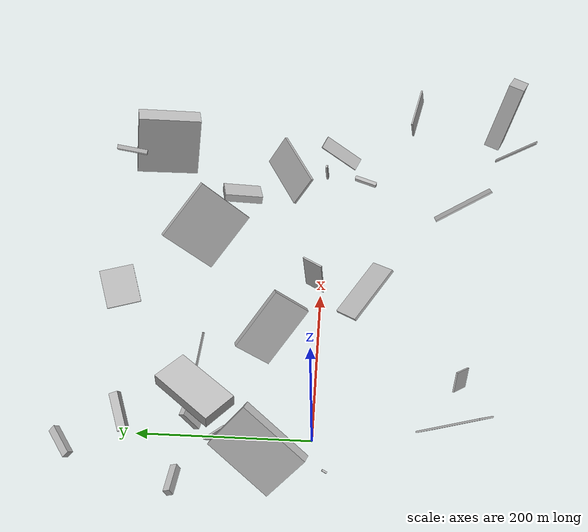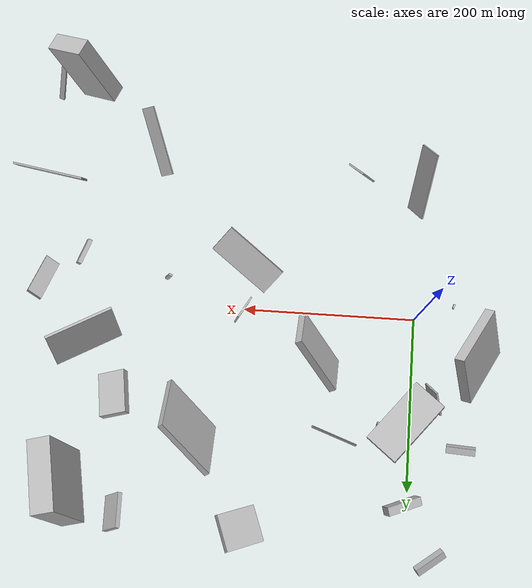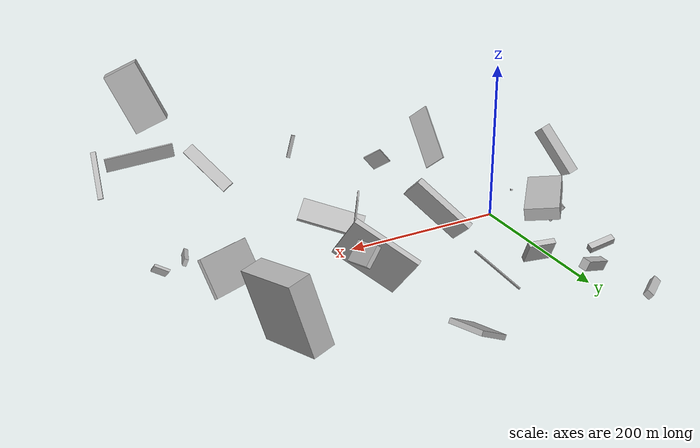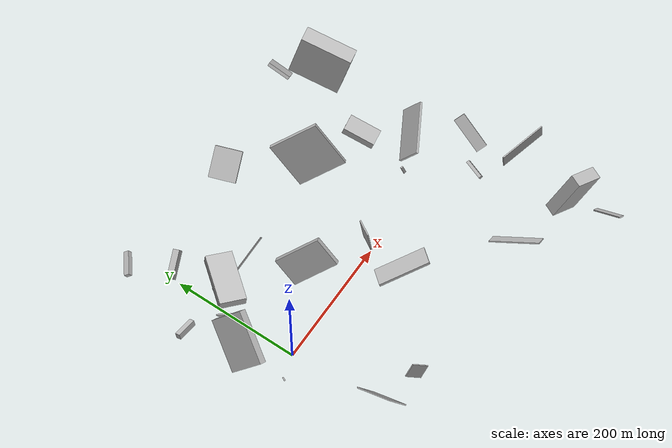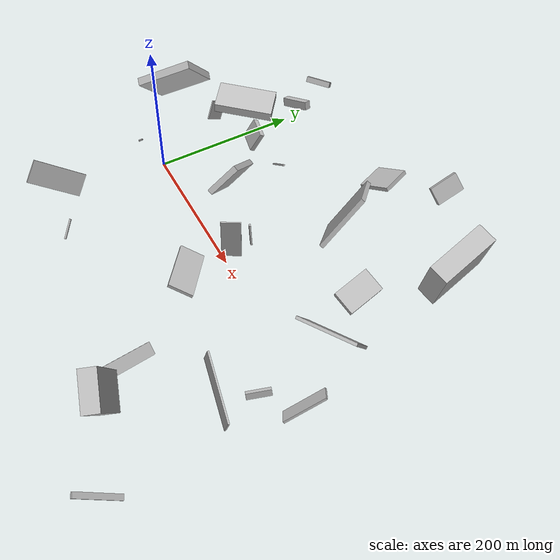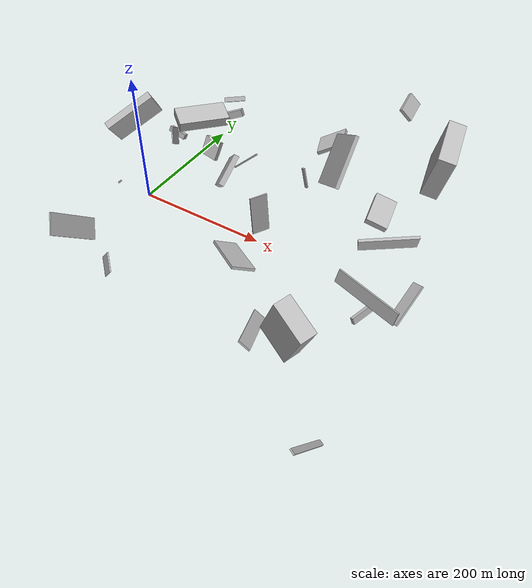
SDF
<sdf version="1.6">
 <world name="default">
  <scene>
   <sky><clouds><speed>12</speed></clouds></sky>
   <ambient>0.4 0.4 0.4 1</ambient>
   <background>0.7 0.7 0.7 1</background>
   <shadows>1</shadows>
  </scene>
  <gravity>0 0 -9.8066</gravity>
  <magnetic_field>6e-06 2.3e-05 -4.2e-05</magnetic_field>
  <physics default="0" name="default_physics" type="ode">
   <ode>
    <solver>
     <type>quick</type>
     <iters>10</iters>
     <sor>1.0</sor>
     <use_dynamic_moi_rescaling>0</use_dynamic_moi_rescaling>
    </solver>
    <constraints>
     <cfm>0</cfm>
     <erp>0.2</erp>
     <contact_max_correcting_vel>100</contact_max_correcting_vel>
     <contact_surface_layer>0.001</contact_surface_layer>
    </constraints>
   </ode>
   <max_step_size>0.004</max_step_size>
   <real_time_factor>1</real_time_factor>
   <real_time_update_rate>250</real_time_update_rate>
  </physics>
  <light name="sun" type="directional">
   <pose>0 0 10 0 0 0</pose>
   <diffuse>0.8 0.8 0.8 1</diffuse>
   <specular>0.2 0.2 0.2 1</specular>
   <attenuation>
    <range>1000</range>
    <constant>0.9</constant>
    <linear>0.01</linear>
    <quadratic>0.001</quadratic>
   </attenuation>
   <direction>-0.5 0.1 -0.9</direction>
  </light>
  <model name="building_1">
   <static>0</static>
   <pose>392.50905378636514 174.55262961602375 75.52583009673901 -0.809263123460938 -1.2817955346616807 -0.5453661548630552</pose>
   <link name="link">
    <gravity>0</gravity>
    <pose>0 0 40.0 0 0 0</pose>
    <collision name="collision"><geometry><box><size>80 26 80</size></box></geometry></collision>
    <visual name="visual">
     <cast_shadows>0</cast_shadows>
     <geometry><box><size>80 26 80</size></box></geometry>
     <material>
      <script>
       <uri>model://HANNAS_wall/materials/scripts</uri>
       <uri>model://HANNAS_wall/materials/textures</uri>
       <name>vrc/HANNAS_wall</name>
      </script>
     </material>
    </visual>
   </link>
  </model>
  <model name="building_2">
   <static>0</static>
   <pose>198.98888976687124 -55.00521655321503 19.06988123432462 2.721297542149349 -0.25592895970845286 -0.6188822808481177</pose>
   <link name="link">
    <gravity>0</gravity>
    <pose>0 0 2.0 0 0 0</pose>
    <collision name="collision"><geometry><box><size>80 34 4</size></box></geometry></collision>
    <visual name="visual">
     <cast_shadows>0</cast_shadows>
     <geometry><box><size>80 34 4</size></box></geometry>
     <material>
      <script>
       <uri>model://HANNAS_wall/materials/scripts</uri>
       <uri>model://HANNAS_wall/materials/textures</uri>
       <name>vrc/HANNAS_wall</name>
      </script>
     </material>
    </visual>
   </link>
  </model>
  <model name="building_3">
   <static>0</static>
   <pose>279.34956335352587 -4.862175801531071 135.55664824959433 0.2450555736607826 0.021968580237098953 -1.8607879972452637</pose>
   <link name="link">
    <gravity>0</gravity>
    <pose>0 0 13.5 0 0 0</pose>
    <collision name="collision"><geometry><box><size>2 4 27</size></box></geometry></collision>
    <visual name="visual">
     <cast_shadows>0</cast_shadows>
     <geometry><box><size>2 4 27</size></box></geometry>
     <material>
      <script>
       <uri>model://HANNAS_wall/materials/scripts</uri>
       <uri>model://HANNAS_wall/materials/textures</uri>
       <name>vrc/HANNAS_wall</name>
      </script>
     </material>
    </visual>
   </link>
  </model>
  <model name="building_4">
   <static>0</static>
   <pose>400.39938835804844 -230.7066557376126 144.9689845531373 1.1235598965371945 0.11536401620930044 -1.9684810902459422</pose>
   <link name="link">
    <gravity>0</gravity>
    <pose>0 0 21.5 0 0 0</pose>
    <collision name="collision"><geometry><box><size>19 80 43</size></box></geometry></collision>
    <visual name="visual">
     <cast_shadows>0</cast_shadows>
     <geometry><box><size>19 80 43</size></box></geometry>
     <material>
      <script>
       <uri>model://HANNAS_wall/materials/scripts</uri>
       <uri>model://HANNAS_wall/materials/textures</uri>
       <name>vrc/HANNAS_wall</name>
      </script>
     </material>
    </visual>
   </link>
  </model>
  <model name="building_5">
   <static>0</static>
   <pose>206.47256574892535 19.648426055404073 45.83500933405522 1.5786712423032088 -0.10585543334797484 -0.526982159891258</pose>
   <link name="link">
    <gravity>0</gravity>
    <pose>0 0 13.0 0 0 0</pose>
    <collision name="collision"><geometry><box><size>2 60 26</size></box></geometry></collision>
    <visual name="visual">
     <cast_shadows>0</cast_shadows>
     <geometry><box><size>2 60 26</size></box></geometry>
     <material>
      <script>
       <uri>model://HANNAS_wall/materials/scripts</uri>
       <uri>model://HANNAS_wall/materials/textures</uri>
       <name>vrc/HANNAS_wall</name>
      </script>
     </material>
    </visual>
   </link>
  </model>
  <model name="building_6">
   <static>0</static>
   <pose>372.8227212161526 61.404399897118644 25.779003659959223 0.56803032950919 -0.11126620067212223 0.5214780119166317</pose>
   <link name="link">
    <gravity>0</gravity>
    <pose>0 0 23.0 0 0 0</pose>
    <collision name="collision"><geometry><box><size>80 4 46</size></box></geometry></collision>
    <visual name="visual">
     <cast_shadows>0</cast_shadows>
     <geometry><box><size>80 4 46</size></box></geometry>
     <material>
      <script>
       <uri>model://HANNAS_wall/materials/scripts</uri>
       <uri>model://HANNAS_wall/materials/textures</uri>
       <name>vrc/HANNAS_wall</name>
      </script>
     </material>
    </visual>
   </link>
  </model>
  <model name="building_7">
   <static>0</static>
   <pose>317.3966461838833 -178.44671920200304 56.47835485302408 0.6364242897549663 0.83735835056684 -2.290112324171399</pose>
   <link name="link">
    <gravity>0</gravity>
    <pose>0 0 8.0 0 0 0</pose>
    <collision name="collision"><geometry><box><size>2 80 16</size></box></geometry></collision>
    <visual name="visual">
     <cast_shadows>0</cast_shadows>
     <geometry><box><size>2 80 16</size></box></geometry>
     <material>
      <script>
       <uri>model://HANNAS_wall/materials/scripts</uri>
       <uri>model://HANNAS_wall/materials/textures</uri>
       <name>vrc/HANNAS_wall</name>
      </script>
     </material>
    </visual>
   </link>
  </model>
  <model name="building_8">
   <static>0</static>
   <pose>431.20587281095 -261.66690038418136 42.97200923590506 2.803480521890087 -0.7633662070652619 -1.749809240056305</pose>
   <link name="link">
    <gravity>0</gravity>
    <pose>0 0 1.0 0 0 0</pose>
    <collision name="collision"><geometry><box><size>66 7 2</size></box></geometry></collision>
    <visual name="visual">
     <cast_shadows>0</cast_shadows>
     <geometry><box><size>66 7 2</size></box></geometry>
     <material>
      <script>
       <uri>model://HANNAS_wall/materials/scripts</uri>
       <uri>model://HANNAS_wall/materials/textures</uri>
       <name>vrc/HANNAS_wall</name>
      </script>
     </material>
    </visual>
   </link>
  </model>
  <model name="building_9">
   <static>0</static>
   <pose>324.1947914697816 108.37209103594861 41.94041134164097 2.5251543312174753 1.1704197620753323 2.7194638044398634</pose>
   <link name="link">
    <gravity>0</gravity>
    <pose>0 0 16.0 0 0 0</pose>
    <collision name="collision"><geometry><box><size>10 50 32</size></box></geometry></collision>
    <visual name="visual">
     <cast_shadows>0</cast_shadows>
     <geometry><box><size>10 50 32</size></box></geometry>
     <material>
      <script>
       <uri>model://HANNAS_wall/materials/scripts</uri>
       <uri>model://HANNAS_wall/materials/textures</uri>
       <name>vrc/HANNAS_wall</name>
      </script>
     </material>
    </visual>
   </link>
  </model>
  <model name="building_10">
   <static>0</static>
   <pose>-22.564412811696688 106.91344832943243 41.10967306515853 -0.2271503284686574 -0.9374650267097939 2.19421902306387</pose>
   <link name="link">
    <gravity>0</gravity>
    <pose>0 0 14.5 0 0 0</pose>
    <collision name="collision"><geometry><box><size>27 2 29</size></box></geometry></collision>
    <visual name="visual">
     <cast_shadows>0</cast_shadows>
     <geometry><box><size>27 2 29</size></box></geometry>
     <material>
      <script>
       <uri>model://HANNAS_wall/materials/scripts</uri>
       <uri>model://HANNAS_wall/materials/textures</uri>
       <name>vrc/HANNAS_wall</name>
      </script>
     </material>
    </visual>
   </link>
  </model>
  <model name="building_11">
   <static>0</static>
   <pose>-52.42209929416538 49.06337302707102 94.04159643112966 -0.9934765561283655 -0.45181871881626046 1.0178082541630378</pose>
   <link name="link">
    <gravity>0</gravity>
    <pose>0 0 5.5 0 0 0</pose>
    <collision name="collision"><geometry><box><size>80 64 11</size></box></geometry></collision>
    <visual name="visual">
     <cast_shadows>0</cast_shadows>
     <geometry><box><size>80 64 11</size></box></geometry>
     <material>
      <script>
       <uri>model://HANNAS_wall/materials/scripts</uri>
       <uri>model://HANNAS_wall/materials/textures</uri>
       <name>vrc/HANNAS_wall</name>
      </script>
     </material>
    </visual>
   </link>
  </model>
  <model name="building_12">
   <static>0</static>
   <pose>113.8301917029 133.99986925973957 39.0213676101488 -2.6207776272049825 -0.623944428982592 2.0941019151375464</pose>
   <link name="link">
    <gravity>0</gravity>
    <pose>0 0 40.0 0 0 0</pose>
    <collision name="collision"><geometry><box><size>2 2 80</size></box></geometry></collision>
    <visual name="visual">
     <cast_shadows>0</cast_shadows>
     <geometry><box><size>2 2 80</size></box></geometry>
     <material>
      <script>
       <uri>model://HANNAS_wall/materials/scripts</uri>
       <uri>model://HANNAS_wall/materials/textures</uri>
       <name>vrc/HANNAS_wall</name>
      </script>
     </material>
    </visual>
   </link>
  </model>
  <model name="building_13">
   <static>0</static>
   <pose>-56.79378643676078 149.81174216961466 16.24716367574321 -2.933692466191708 0.4044680277969753 1.5844367091527154</pose>
   <link name="link">
    <gravity>0</gravity>
    <pose>0 0 4.5 0 0 0</pose>
    <collision name="collision"><geometry><box><size>8 33 9</size></box></geometry></collision>
    <visual name="visual">
     <cast_shadows>0</cast_shadows>
     <geometry><box><size>8 33 9</size></box></geometry>
     <material>
      <script>
       <uri>model://HANNAS_wall/materials/scripts</uri>
       <uri>model://HANNAS_wall/materials/textures</uri>
       <name>vrc/HANNAS_wall</name>
      </script>
     </material>
    </visual>
   </link>
  </model>
  <model name="building_14">
   <static>0</static>
   <pose>1.9935037736840535 -153.52622860478664 51.216632816084754 -1.0191903780664018 -0.7037145208561504 -1.6979735205451836</pose>
   <link name="link">
    <gravity>0</gravity>
    <pose>0 0 1.0 0 0 0</pose>
    <collision name="collision"><geometry><box><size>80 31 2</size></box></geometry></collision>
    <visual name="visual">
     <cast_shadows>0</cast_shadows>
     <geometry><box><size>80 31 2</size></box></geometry>
     <material>
      <script>
       <uri>model://HANNAS_wall/materials/scripts</uri>
       <uri>model://HANNAS_wall/materials/textures</uri>
       <name>vrc/HANNAS_wall</name>
      </script>
     </material>
    </visual>
   </link>
  </model>
  <model name="building_15">
   <static>0</static>
   <pose>-42.27546035276095 -16.28123430177905 18.879477233763147 1.9793168842873765 -1.1474893532677288 -2.351708391154465</pose>
   <link name="link">
    <gravity>0</gravity>
    <pose>0 0 1.0 0 0 0</pose>
    <collision name="collision"><geometry><box><size>2 6 2</size></box></geometry></collision>
    <visual name="visual">
     <cast_shadows>0</cast_shadows>
     <geometry><box><size>2 6 2</size></box></geometry>
     <material>
      <script>
       <uri>model://HANNAS_wall/materials/scripts</uri>
       <uri>model://HANNAS_wall/materials/textures</uri>
       <name>vrc/HANNAS_wall</name>
      </script>
     </material>
    </visual>
   </link>
  </model>
  <model name="building_16">
   <static>0</static>
   <pose>316.71997373090574 238.27871410082716 137.61524351558273 -2.2796759392179005 -0.25983586904664496 1.6138589743206424</pose>
   <link name="link">
    <gravity>0</gravity>
    <pose>0 0 2.5 0 0 0</pose>
    <collision name="collision"><geometry><box><size>36 23 5</size></box></geometry></collision>
    <visual name="visual">
     <cast_shadows>0</cast_shadows>
     <geometry><box><size>36 23 5</size></box></geometry>
     <material>
      <script>
       <uri>model://HANNAS_wall/materials/scripts</uri>
       <uri>model://HANNAS_wall/materials/textures</uri>
       <name>vrc/HANNAS_wall</name>
      </script>
     </material>
    </visual>
   </link>
  </model>
  <model name="building_17">
   <static>0</static>
   <pose>23.476981834918668 131.8932703591272 19.65478296786619 -3.105729951638317 -1.0719581784435859 1.3357797738412647</pose>
   <link name="link">
    <gravity>0</gravity>
    <pose>0 0 3.5 0 0 0</pose>
    <collision name="collision"><geometry><box><size>31 33 7</size></box></geometry></collision>
    <visual name="visual">
     <cast_shadows>0</cast_shadows>
     <geometry><box><size>31 33 7</size></box></geometry>
     <material>
      <script>
       <uri>model://HANNAS_wall/materials/scripts</uri>
       <uri>model://HANNAS_wall/materials/textures</uri>
       <name>vrc/HANNAS_wall</name>
      </script>
     </material>
    </visual>
   </link>
  </model>
  <model name="building_18">
   <static>0</static>
   <pose>27.94798878645112 221.6395715447477 42.00388534442141 2.600078194695496 1.14613764472491 -0.22160096902951573</pose>
   <link name="link">
    <gravity>0</gravity>
    <pose>0 0 21.5 0 0 0</pose>
    <collision name="collision"><geometry><box><size>12 10 43</size></box></geometry></collision>
    <visual name="visual">
     <cast_shadows>0</cast_shadows>
     <geometry><box><size>12 10 43</size></box></geometry>
     <material>
      <script>
       <uri>model://HANNAS_wall/materials/scripts</uri>
       <uri>model://HANNAS_wall/materials/textures</uri>
       <name>vrc/HANNAS_wall</name>
      </script>
     </material>
    </visual>
   </link>
  </model>
  <model name="building_19">
   <static>0</static>
   <pose>30.66845955620859 113.16464568360313 77.43017916581216 1.4261442082801172 -0.05353322913539604 -2.251547454162438</pose>
   <link name="link">
    <gravity>0</gravity>
    <pose>0 0 20.0 0 0 0</pose>
    <collision name="collision"><geometry><box><size>80 15 40</size></box></geometry></collision>
    <visual name="visual">
     <cast_shadows>0</cast_shadows>
     <geometry><box><size>80 15 40</size></box></geometry>
     <material>
      <script>
       <uri>model://HANNAS_wall/materials/scripts</uri>
       <uri>model://HANNAS_wall/materials/textures</uri>
       <name>vrc/HANNAS_wall</name>
      </script>
     </material>
    </visual>
   </link>
  </model>
  <model name="building_20">
   <static>0</static>
   <pose>224.6485523161271 168.6990433208041 51.98408322255524 -0.9674727378351874 -0.4362514520416812 -2.5998439898793064</pose>
   <link name="link">
    <gravity>0</gravity>
    <pose>0 0 40.0 0 0 0</pose>
    <collision name="collision"><geometry><box><size>6 80 80</size></box></geometry></collision>
    <visual name="visual">
     <cast_shadows>0</cast_shadows>
     <geometry><box><size>6 80 80</size></box></geometry>
     <material>
      <script>
       <uri>model://HANNAS_wall/materials/scripts</uri>
       <uri>model://HANNAS_wall/materials/textures</uri>
       <name>vrc/HANNAS_wall</name>
      </script>
     </material>
    </visual>
   </link>
  </model>
  <model name="building_21">
   <static>0</static>
   <pose>189.07399478158032 251.8159563891366 19.391654728836933 0.04148020042692284 -0.5258101862450972 0.32877880138515736</pose>
   <link name="link">
    <gravity>0</gravity>
    <pose>0 0 3.0 0 0 0</pose>
    <collision name="collision"><geometry><box><size>48 42 6</size></box></geometry></collision>
    <visual name="visual">
     <cast_shadows>0</cast_shadows>
     <geometry><box><size>48 42 6</size></box></geometry>
     <material>
      <script>
       <uri>model://HANNAS_wall/materials/scripts</uri>
       <uri>model://HANNAS_wall/materials/textures</uri>
       <name>vrc/HANNAS_wall</name>
      </script>
     </material>
    </visual>
   </link>
  </model>
  <model name="building_22">
   <static>0</static>
   <pose>389.86943402332236 -53.682868879337235 11.581918483561605 -1.1780463038537263 0.07928246160595813 -1.9020842043402801</pose>
   <link name="link">
    <gravity>0</gravity>
    <pose>0 0 2.5 0 0 0</pose>
    <collision name="collision"><geometry><box><size>31 9 5</size></box></geometry></collision>
    <visual name="visual">
     <cast_shadows>0</cast_shadows>
     <geometry><box><size>31 9 5</size></box></geometry>
     <material>
      <script>
       <uri>model://HANNAS_wall/materials/scripts</uri>
       <uri>model://HANNAS_wall/materials/textures</uri>
       <name>vrc/HANNAS_wall</name>
      </script>
     </material>
    </visual>
   </link>
  </model>
  <model name="building_23">
   <static>0</static>
   <pose>439.5080822274213 5.432001055784768 40.058910170970506 -2.215341959148332 0.4076693711464525 2.644062705172059</pose>
   <link name="link">
    <gravity>0</gravity>
    <pose>0 0 29.5 0 0 0</pose>
    <collision name="collision"><geometry><box><size>18 3 59</size></box></geometry></collision>
    <visual name="visual">
     <cast_shadows>0</cast_shadows>
     <geometry><box><size>18 3 59</size></box></geometry>
     <material>
      <script>
       <uri>model://HANNAS_wall/materials/scripts</uri>
       <uri>model://HANNAS_wall/materials/textures</uri>
       <name>vrc/HANNAS_wall</name>
      </script>
     </material>
    </visual>
   </link>
  </model>
  <model name="building_24">
   <static>0</static>
   <pose>-22.872900685988185 270.9166657937057 27.16078028394578 3.0921941636999666 -0.9481169136138718 2.258180969284431</pose>
   <link name="link">
    <gravity>0</gravity>
    <pose>0 0 4.5 0 0 0</pose>
    <collision name="collision"><geometry><box><size>8 37 9</size></box></geometry></collision>
    <visual name="visual">
     <cast_shadows>0</cast_shadows>
     <geometry><box><size>8 37 9</size></box></geometry>
     <material>
      <script>
       <uri>model://HANNAS_wall/materials/scripts</uri>
       <uri>model://HANNAS_wall/materials/textures</uri>
       <name>vrc/HANNAS_wall</name>
      </script>
     </material>
    </visual>
   </link>
  </model>
  <model name="building_25">
   <static>0</static>
   <pose>417.2002053141691 -116.3804161677775 120.20175066294985 -0.5794179459304432 1.3281151718898452 -2.3361025486076934</pose>
   <link name="link">
    <gravity>0</gravity>
    <pose>0 0 1.0 0 0 0</pose>
    <collision name="collision"><geometry><box><size>18 80 2</size></box></geometry></collision>
    <visual name="visual">
     <cast_shadows>0</cast_shadows>
     <geometry><box><size>18 80 2</size></box></geometry>
     <material>
      <script>
       <uri>model://HANNAS_wall/materials/scripts</uri>
       <uri>model://HANNAS_wall/materials/textures</uri>
       <name>vrc/HANNAS_wall</name>
      </script>
     </material>
    </visual>
   </link>
  </model>
  <model name="building_26">
   <static>0</static>
   <pose>134.88196162368894 29.953432308662272 82.17187452907464 2.344929348243459 -0.46906794955969916 -2.8011721123958466</pose>
   <link name="link">
    <gravity>0</gravity>
    <pose>0 0 40.0 0 0 0</pose>
    <collision name="collision"><geometry><box><size>8 48 80</size></box></geometry></collision>
    <visual name="visual">
     <cast_shadows>0</cast_shadows>
     <geometry><box><size>8 48 80</size></box></geometry>
     <material>
      <script>
       <uri>model://HANNAS_wall/materials/scripts</uri>
       <uri>model://HANNAS_wall/materials/textures</uri>
       <name>vrc/HANNAS_wall</name>
      </script>
     </material>
    </visual>
   </link>
  </model>
  <model name="building_27">
   <static>0</static>
   <pose>79.16408856032818 -168.90452040664405 36.713731526187665 -2.789982538432175 -0.5815259156103046 2.365143328177334</pose>
   <link name="link">
    <gravity>0</gravity>
    <pose>0 0 12.0 0 0 0</pose>
    <collision name="collision"><geometry><box><size>27 2 24</size></box></geometry></collision>
    <visual name="visual">
     <cast_shadows>0</cast_shadows>
     <geometry><box><size>27 2 24</size></box></geometry>
     <material>
      <script>
       <uri>model://HANNAS_wall/materials/scripts</uri>
       <uri>model://HANNAS_wall/materials/textures</uri>
       <name>vrc/HANNAS_wall</name>
      </script>
     </material>
    </visual>
   </link>
  </model>
 </world>
</sdf>
